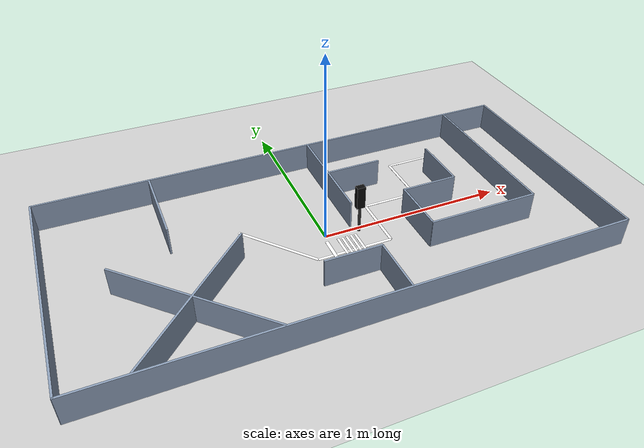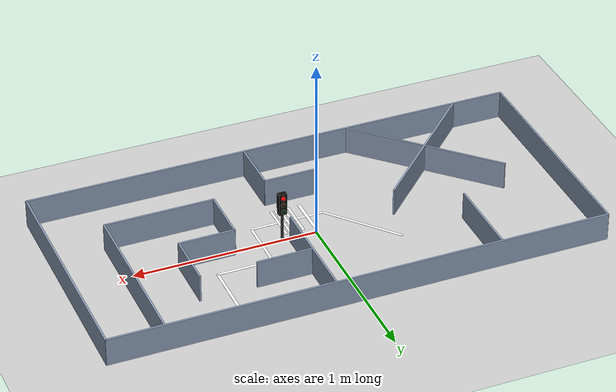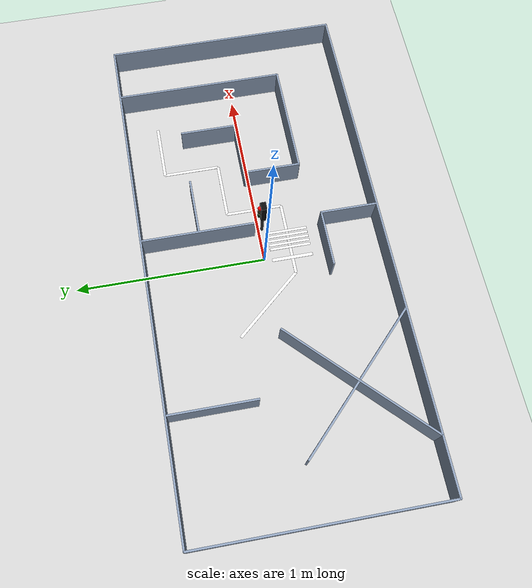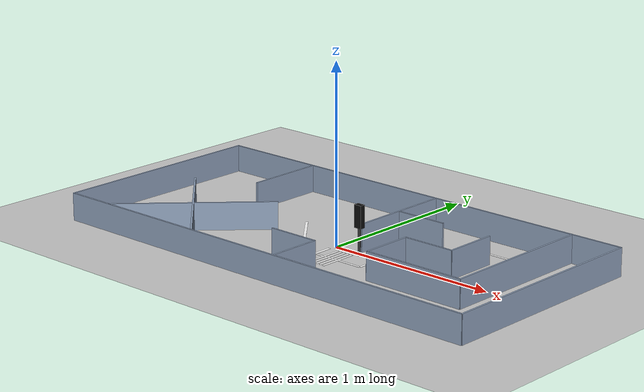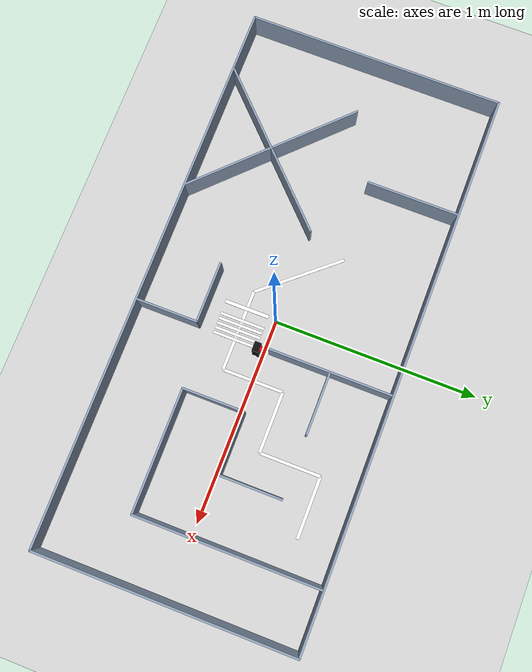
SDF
<?xml version="1.0"?>
<sdf version="1.6">
  <world name="map_260905">
    <plugin filename="gz-sim-physics-system" name="gz::sim::systems::Physics">
      <engine><filename>gz-physics-dartsim-plugin</filename></engine>
    </plugin>
    <plugin filename="gz-sim-user-commands-system" name="gz::sim::systems::UserCommands"/>
    <plugin filename="gz-sim-scene-broadcaster-system" name="gz::sim::systems::SceneBroadcaster"/>
    <plugin filename="gz-sim-sensors-system" name="gz::sim::systems::Sensors">
      <render_engine>ogre2</render_engine>
    </plugin>
    <plugin filename="gz-sim-imu-system" name="gz::sim::systems::Imu"/>

    <light type="directional" name="sun">
      <cast_shadows>false</cast_shadows>
      <pose>0 0 10 0 0 0</pose>
      <diffuse>0.9 0.9 0.9 1</diffuse>
      <specular>0.2 0.2 0.2 1</specular>
      <direction>-0.4 0.2 -0.9</direction>
    </light>

    <model name="ground_plane">
      <static>true</static>
      <link name="link">
        <collision name="collision">
          <geometry><plane><normal>0 0 1</normal><size>100 100</size></plane></geometry>
        </collision>
        <visual name="visual">
          <geometry><plane><normal>0 0 1</normal><size>100 100</size></plane></geometry>
          <material>
            <ambient>0.8 0.8 0.8 1</ambient><diffuse>0.8 0.8 0.8 1</diffuse>
            <specular>0.8 0.8 0.8 1</specular>
          </material>
        </visual>
      </link>
    </model>

    <model name="track_260905">
      <static>true</static>
      <pose>0 0 0 0 0 0</pose>
      <link name="link">
        <collision name="wall_00_col">
          <pose>-1.35250 0.00000 0.07750 0 0 0.0000000</pose>
          <geometry><box><size>0.01000 1.26000 0.15500</size></box></geometry>
          <surface><friction><ode><mu>0.9</mu><mu2>0.9</mu2></ode></friction></surface>
        </collision>
        <visual name="wall_00_vis">
          <pose>-1.35250 0.00000 0.07750 0 0 0.0000000</pose>
          <geometry><box><size>0.01000 1.26000 0.15500</size></box></geometry>
          <material>
            <ambient>0.30 0.35 0.45 1</ambient>
            <diffuse>0.55 0.62 0.72 1</diffuse>
            <specular>0.1 0.1 0.1 1</specular>
          </material>
        </visual>
        <collision name="wall_01_col">
          <pose>1.35250 0.00000 0.07750 0 0 0.0000000</pose>
          <geometry><box><size>0.01000 1.26000 0.15500</size></box></geometry>
          <surface><friction><ode><mu>0.9</mu><mu2>0.9</mu2></ode></friction></surface>
        </collision>
        <visual name="wall_01_vis">
          <pose>1.35250 0.00000 0.07750 0 0 0.0000000</pose>
          <geometry><box><size>0.01000 1.26000 0.15500</size></box></geometry>
          <material>
            <ambient>0.30 0.35 0.45 1</ambient>
            <diffuse>0.55 0.62 0.72 1</diffuse>
            <specular>0.1 0.1 0.1 1</specular>
          </material>
        </visual>
        <collision name="wall_02_col">
          <pose>0.00000 -0.62750 0.07750 0 0 0.0000000</pose>
          <geometry><box><size>2.71000 0.01000 0.15500</size></box></geometry>
          <surface><friction><ode><mu>0.9</mu><mu2>0.9</mu2></ode></friction></surface>
        </collision>
        <visual name="wall_02_vis">
          <pose>0.00000 -0.62750 0.07750 0 0 0.0000000</pose>
          <geometry><box><size>2.71000 0.01000 0.15500</size></box></geometry>
          <material>
            <ambient>0.30 0.35 0.45 1</ambient>
            <diffuse>0.55 0.62 0.72 1</diffuse>
            <specular>0.1 0.1 0.1 1</specular>
          </material>
        </visual>
        <collision name="wall_03_col">
          <pose>0.00000 0.62750 0.07750 0 0 0.0000000</pose>
          <geometry><box><size>2.71000 0.01000 0.15500</size></box></geometry>
          <surface><friction><ode><mu>0.9</mu><mu2>0.9</mu2></ode></friction></surface>
        </collision>
        <visual name="wall_03_vis">
          <pose>0.00000 0.62750 0.07750 0 0 0.0000000</pose>
          <geometry><box><size>2.71000 0.01000 0.15500</size></box></geometry>
          <material>
            <ambient>0.30 0.35 0.45 1</ambient>
            <diffuse>0.55 0.62 0.72 1</diffuse>
            <specular>0.1 0.1 0.1 1</specular>
          </material>
        </visual>
        <collision name="wall_04_col">
          <pose>-0.75435 0.39995 0.07750 0 0 0.0000000</pose>
          <geometry><box><size>0.01000 0.45000 0.15500</size></box></geometry>
          <surface><friction><ode><mu>0.9</mu><mu2>0.9</mu2></ode></friction></surface>
        </collision>
        <visual name="wall_04_vis">
          <pose>-0.75435 0.39995 0.07750 0 0 0.0000000</pose>
          <geometry><box><size>0.01000 0.45000 0.15500</size></box></geometry>
          <material>
            <ambient>0.30 0.35 0.45 1</ambient>
            <diffuse>0.55 0.62 0.72 1</diffuse>
            <specular>0.1 0.1 0.1 1</specular>
          </material>
        </visual>
        <collision name="wall_05_col">
          <pose>0.00495 -0.32745 0.07750 0 0 0.0000000</pose>
          <geometry><box><size>0.30000 0.01000 0.15500</size></box></geometry>
          <surface><friction><ode><mu>0.9</mu><mu2>0.9</mu2></ode></friction></surface>
        </collision>
        <visual name="wall_05_vis">
          <pose>0.00495 -0.32745 0.07750 0 0 0.0000000</pose>
          <geometry><box><size>0.30000 0.01000 0.15500</size></box></geometry>
          <material>
            <ambient>0.30 0.35 0.45 1</ambient>
            <diffuse>0.55 0.62 0.72 1</diffuse>
            <specular>0.1 0.1 0.1 1</specular>
          </material>
        </visual>
        <collision name="wall_06_col">
          <pose>0.15245 -0.47495 0.07750 0 0 0.0000000</pose>
          <geometry><box><size>0.01000 0.30000 0.15500</size></box></geometry>
          <surface><friction><ode><mu>0.9</mu><mu2>0.9</mu2></ode></friction></surface>
        </collision>
        <visual name="wall_06_vis">
          <pose>0.15245 -0.47495 0.07750 0 0 0.0000000</pose>
          <geometry><box><size>0.01000 0.30000 0.15500</size></box></geometry>
          <material>
            <ambient>0.30 0.35 0.45 1</ambient>
            <diffuse>0.55 0.62 0.72 1</diffuse>
            <specular>0.1 0.1 0.1 1</specular>
          </material>
        </visual>
        <collision name="wall_07_col">
          <pose>0.15245 0.32495 0.07750 0 0 0.0000000</pose>
          <geometry><box><size>0.01000 0.60000 0.15500</size></box></geometry>
          <surface><friction><ode><mu>0.9</mu><mu2>0.9</mu2></ode></friction></surface>
        </collision>
        <visual name="wall_07_vis">
          <pose>0.15245 0.32495 0.07750 0 0 0.0000000</pose>
          <geometry><box><size>0.01000 0.60000 0.15500</size></box></geometry>
          <material>
            <ambient>0.30 0.35 0.45 1</ambient>
            <diffuse>0.55 0.62 0.72 1</diffuse>
            <specular>0.1 0.1 0.1 1</specular>
          </material>
        </visual>
        <collision name="wall_08_col">
          <pose>0.30495 0.32245 0.07750 0 0 0.0000000</pose>
          <geometry><box><size>0.30000 0.01000 0.15500</size></box></geometry>
          <surface><friction><ode><mu>0.9</mu><mu2>0.9</mu2></ode></friction></surface>
        </collision>
        <visual name="wall_08_vis">
          <pose>0.30495 0.32245 0.07750 0 0 0.0000000</pose>
          <geometry><box><size>0.30000 0.01000 0.15500</size></box></geometry>
          <material>
            <ambient>0.30 0.35 0.45 1</ambient>
            <diffuse>0.55 0.62 0.72 1</diffuse>
            <specular>0.1 0.1 0.1 1</specular>
          </material>
        </visual>
        <collision name="wall_09_col">
          <pose>0.45745 -0.12500 0.07750 0 0 0.0000000</pose>
          <geometry><box><size>0.01000 0.29990 0.15500</size></box></geometry>
          <surface><friction><ode><mu>0.9</mu><mu2>0.9</mu2></ode></friction></surface>
        </collision>
        <visual name="wall_09_vis">
          <pose>0.45745 -0.12500 0.07750 0 0 0.0000000</pose>
          <geometry><box><size>0.01000 0.29990 0.15500</size></box></geometry>
          <material>
            <ambient>0.30 0.35 0.45 1</ambient>
            <diffuse>0.55 0.62 0.72 1</diffuse>
            <specular>0.1 0.1 0.1 1</specular>
          </material>
        </visual>
        <collision name="wall_10_col">
          <pose>0.60750 0.02245 0.07750 0 0 0.0000000</pose>
          <geometry><box><size>0.30510 0.01000 0.15500</size></box></geometry>
          <surface><friction><ode><mu>0.9</mu><mu2>0.9</mu2></ode></friction></surface>
        </collision>
        <visual name="wall_10_vis">
          <pose>0.60750 0.02245 0.07750 0 0 0.0000000</pose>
          <geometry><box><size>0.30510 0.01000 0.15500</size></box></geometry>
          <material>
            <ambient>0.30 0.35 0.45 1</ambient>
            <diffuse>0.55 0.62 0.72 1</diffuse>
            <specular>0.1 0.1 0.1 1</specular>
          </material>
        </visual>
        <collision name="wall_11_col">
          <pose>0.75500 -0.27245 0.07750 0 0 0.0000000</pose>
          <geometry><box><size>0.60010 0.01000 0.15500</size></box></geometry>
          <surface><friction><ode><mu>0.9</mu><mu2>0.9</mu2></ode></friction></surface>
        </collision>
        <visual name="wall_11_vis">
          <pose>0.75500 -0.27245 0.07750 0 0 0.0000000</pose>
          <geometry><box><size>0.60010 0.01000 0.15500</size></box></geometry>
          <material>
            <ambient>0.30 0.35 0.45 1</ambient>
            <diffuse>0.55 0.62 0.72 1</diffuse>
            <specular>0.1 0.1 0.1 1</specular>
          </material>
        </visual>
        <collision name="wall_12_col">
          <pose>0.75755 0.17245 0.07750 0 0 0.0000000</pose>
          <geometry><box><size>0.01000 0.30500 0.15500</size></box></geometry>
          <surface><friction><ode><mu>0.9</mu><mu2>0.9</mu2></ode></friction></surface>
        </collision>
        <visual name="wall_12_vis">
          <pose>0.75755 0.17245 0.07750 0 0 0.0000000</pose>
          <geometry><box><size>0.01000 0.30500 0.15500</size></box></geometry>
          <material>
            <ambient>0.30 0.35 0.45 1</ambient>
            <diffuse>0.55 0.62 0.72 1</diffuse>
            <specular>0.1 0.1 0.1 1</specular>
          </material>
        </visual>
        <collision name="wall_13_col">
          <pose>1.05255 0.17500 0.07750 0 0 0.0000000</pose>
          <geometry><box><size>0.01000 0.89990 0.15500</size></box></geometry>
          <surface><friction><ode><mu>0.9</mu><mu2>0.9</mu2></ode></friction></surface>
        </collision>
        <visual name="wall_13_vis">
          <pose>1.05255 0.17500 0.07750 0 0 0.0000000</pose>
          <geometry><box><size>0.01000 0.89990 0.15500</size></box></geometry>
          <material>
            <ambient>0.30 0.35 0.45 1</ambient>
            <diffuse>0.55 0.62 0.72 1</diffuse>
            <specular>0.1 0.1 0.1 1</specular>
          </material>
        </visual>
        <collision name="diag_0_col">
          <pose>-0.75357 -0.30857 0.07750 0 0 -0.7853982</pose>
          <geometry><box><size>0.90000 0.01000 0.15500</size></box></geometry>
          <surface><friction><ode><mu>0.9</mu><mu2>0.9</mu2></ode></friction></surface>
        </collision>
        <visual name="diag_0_vis">
          <pose>-0.75357 -0.30857 0.07750 0 0 -0.7853982</pose>
          <geometry><box><size>0.90000 0.01000 0.15500</size></box></geometry>
          <material>
            <ambient>0.30 0.35 0.45 1</ambient>
            <diffuse>0.55 0.62 0.72 1</diffuse>
            <specular>0.1 0.1 0.1 1</specular>
          </material>
        </visual>
        <collision name="diag_1_col">
          <pose>-0.75003 -0.30857 0.07750 0 0 0.7853982</pose>
          <geometry><box><size>0.90000 0.01000 0.15500</size></box></geometry>
          <surface><friction><ode><mu>0.9</mu><mu2>0.9</mu2></ode></friction></surface>
        </collision>
        <visual name="diag_1_vis">
          <pose>-0.75003 -0.30857 0.07750 0 0 0.7853982</pose>
          <geometry><box><size>0.90000 0.01000 0.15500</size></box></geometry>
          <material>
            <ambient>0.30 0.35 0.45 1</ambient>
            <diffuse>0.55 0.62 0.72 1</diffuse>
            <specular>0.1 0.1 0.1 1</specular>
          </material>
        </visual>
      </link>
    </model>

    <scene><shadows>false</shadows></scene>

    <gui fullscreen="0">
      <camera name="user_camera">
        <pose>0 -2.9 2.9 0 0.78 1.5707963</pose>
        <view_controller>orbit</view_controller>
        <projection_type>perspective</projection_type>
      </camera>
    </gui>

    <!-- The type is aligned with the explicitly requested engine above.
         Step/rate values below are retained, not a measured performance guarantee. -->
    <physics name="track_1ms" type="dart">
      <real_time_update_rate>1000.0</real_time_update_rate>
      <max_step_size>0.001</max_step_size>
      <real_time_factor>1</real_time_factor>
    </physics>

    <!-- source_world_sha256=3f2e3a822cbf72223634d173d49bd3626c0281e8f433cd54e766134bffa15528 road_scene_sha256=93e279add0ffa8cdc9cffeb9ef2a85769d5f94cf962cafcad654b05f06b9c6c0 -->

    <!-- GENERATED from semantic/road_scene.yaml; markings are visual-only. -->
    <model name="semantic_road_markings"><static>true</static><link name="link"><visual name="lane_main_segment_00"><pose>-0.250000 0.025000 0.001500 0 0 -0.862170055</pose><geometry><box><size>0.460977 0.015000 0.001000</size></box></geometry><material><ambient>1 1 1 1</ambient><diffuse>1 1 1 1</diffuse><emissive>0 0 0 1</emissive></material></visual><visual name="lane_main_segment_01"><pose>0.100000 -0.150000 0.001500 0 0 0.000000000</pose><geometry><box><size>0.400000 0.015000 0.001000</size></box></geometry><material><ambient>1 1 1 1</ambient><diffuse>1 1 1 1</diffuse><emissive>0 0 0 1</emissive></material></visual><visual name="lane_main_segment_02"><pose>0.300000 0.000000 0.001500 0 0 1.570796327</pose><geometry><box><size>0.300000 0.015000 0.001000</size></box></geometry><material><ambient>1 1 1 1</ambient><diffuse>1 1 1 1</diffuse><emissive>0 0 0 1</emissive></material></visual><visual name="lane_main_segment_03"><pose>0.450000 0.150000 0.001500 0 0 0.000000000</pose><geometry><box><size>0.300000 0.015000 0.001000</size></box></geometry><material><ambient>1 1 1 1</ambient><diffuse>1 1 1 1</diffuse><emissive>0 0 0 1</emissive></material></visual><visual name="lane_main_segment_04"><pose>0.600000 0.300000 0.001500 0 0 1.570796327</pose><geometry><box><size>0.300000 0.015000 0.001000</size></box></geometry><material><ambient>1 1 1 1</ambient><diffuse>1 1 1 1</diffuse><emissive>0 0 0 1</emissive></material></visual><visual name="lane_main_segment_05"><pose>0.750000 0.450000 0.001500 0 0 0.000000000</pose><geometry><box><size>0.300000 0.015000 0.001000</size></box></geometry><material><ambient>1 1 1 1</ambient><diffuse>1 1 1 1</diffuse><emissive>0 0 0 1</emissive></material></visual><visual name="crosswalk_main_stripe_00"><pose>0.052000 -0.150000 0.001600 0 0 0.000000000</pose><geometry><box><size>0.014000 0.220000 0.001000</size></box></geometry><material><ambient>1 1 1 1</ambient><diffuse>1 1 1 1</diffuse><emissive>0 0 0 1</emissive></material></visual><visual name="crosswalk_main_stripe_01"><pose>0.076000 -0.150000 0.001600 0 0 0.000000000</pose><geometry><box><size>0.014000 0.220000 0.001000</size></box></geometry><material><ambient>1 1 1 1</ambient><diffuse>1 1 1 1</diffuse><emissive>0 0 0 1</emissive></material></visual><visual name="crosswalk_main_stripe_02"><pose>0.100000 -0.150000 0.001600 0 0 0.000000000</pose><geometry><box><size>0.014000 0.220000 0.001000</size></box></geometry><material><ambient>1 1 1 1</ambient><diffuse>1 1 1 1</diffuse><emissive>0 0 0 1</emissive></material></visual><visual name="crosswalk_main_stripe_03"><pose>0.124000 -0.150000 0.001600 0 0 0.000000000</pose><geometry><box><size>0.014000 0.220000 0.001000</size></box></geometry><material><ambient>1 1 1 1</ambient><diffuse>1 1 1 1</diffuse><emissive>0 0 0 1</emissive></material></visual><visual name="crosswalk_main_stripe_04"><pose>0.148000 -0.150000 0.001600 0 0 0.000000000</pose><geometry><box><size>0.014000 0.220000 0.001000</size></box></geometry><material><ambient>1 1 1 1</ambient><diffuse>1 1 1 1</diffuse><emissive>0 0 0 1</emissive></material></visual><visual name="stop_line_main"><pose>-0.010000 -0.150000 0.001700 0 0 0.000000000</pose><geometry><box><size>0.018000 0.220000 0.001000</size></box></geometry><material><ambient>1 1 1 1</ambient><diffuse>1 1 1 1</diffuse><emissive>0 0 0 1</emissive></material></visual></link></model><model name="signal_main"><static>true</static><pose>0.180000 -0.020000 0.000000 0.000000 0.000000 3.141592654</pose><link name="link"><collision name="pole_collision"><pose>0 0 0.125 0 0 0</pose><geometry><cylinder><radius>0.008</radius><length>0.25</length></cylinder></geometry></collision><visual name="pole"><pose>0 0 0.125 0 0 0</pose><geometry><cylinder><radius>0.008</radius><length>0.25</length></cylinder></geometry><material><ambient>0.18 0.18 0.18 1</ambient><diffuse>0.18 0.18 0.18 1</diffuse><emissive>0 0 0 1</emissive></material></visual><collision name="housing_collision"><pose>0 0 0.215 0 0 0</pose><geometry><box><size>0.045 0.030 0.125</size></box></geometry></collision><visual name="housing"><pose>0 0 0.215 0 0 0</pose><geometry><box><size>0.045 0.030 0.125</size></box></geometry><material><ambient>0.04 0.04 0.04 1</ambient><diffuse>0.04 0.04 0.04 1</diffuse><emissive>0 0 0 1</emissive></material></visual><visual name="signal_main_red"><pose>0 -0.018 0.255 1.570796327 0 0</pose><geometry><sphere><radius>0.012</radius></sphere></geometry><material><ambient>1 0.02 0.02 1</ambient><diffuse>1 0.02 0.02 1</diffuse><emissive>1 0.02 0.02 1</emissive></material></visual><visual name="signal_main_yellow"><pose>0 -0.018 0.215 1.570796327 0 0</pose><geometry><sphere><radius>0.012</radius></sphere></geometry><material><ambient>0.12 0.08 0.01 1</ambient><diffuse>0.12 0.08 0.01 1</diffuse><emissive>0.12 0.08 0.01 1</emissive></material></visual><visual name="signal_main_green"><pose>0 -0.018 0.175 1.570796327 0 0</pose><geometry><sphere><radius>0.012</radius></sphere></geometry><material><ambient>0.01 0.12 0.02 1</ambient><diffuse>0.01 0.12 0.02 1</diffuse><emissive>0.01 0.12 0.02 1</emissive></material></visual></link></model>
  </world>
</sdf>
